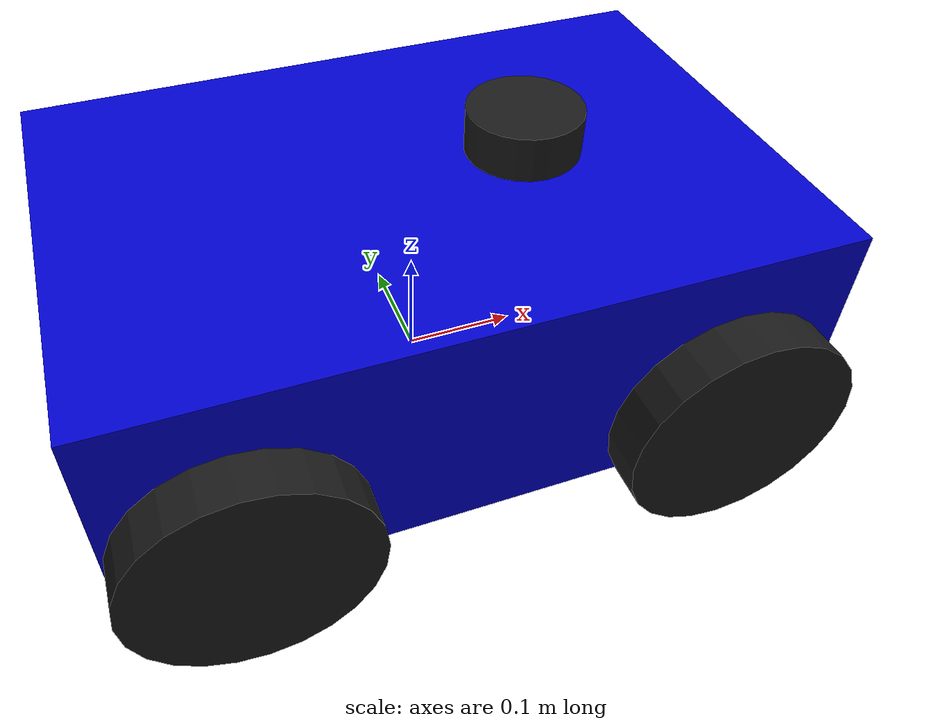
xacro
<?xml version="1.0"?>
<robot xmlns:xacro="http://www.ros.org/wiki/xacro" name="sar_robot">

  <material name="blue"><color rgba="0 0 0.8 1"/></material>
  <material name="black"><color rgba="0.1 0.1 0.1 1"/></material>

  <link name="base_link">
    <visual>
      <origin xyz="0 0 0.1"/>
      <geometry><box size="0.6 0.4 0.2"/></geometry>
      <material name="blue"/>
    </visual>
    <collision>
      <origin xyz="0 0 0.1"/>
      <geometry><box size="0.6 0.4 0.2"/></geometry>
    </collision>
    <inertial>
      <origin xyz="0 0 0.1"/><mass value="5.0"/>
      <inertia ixx="0.08" ixy="0.0" ixz="0.0" iyy="0.16" iyz="0.0" izz="0.22"/>
    </inertial>
  </link>

  <xacro:macro name="wheel" params="prefix x_reflect y_reflect">
    <link name="${prefix}_wheel">
      <visual>
        <geometry><cylinder radius="0.1" length="0.04"/></geometry>
        <material name="black"/>
      </visual>
      <collision>
        <geometry><cylinder radius="0.1" length="0.04"/></geometry>
      </collision>
      <inertial>
        <mass value="0.5"/>
        <inertia ixx="0.001" ixy="0.0" ixz="0.0" iyy="0.001" iyz="0.0" izz="0.002"/>
      </inertial>
    </link>
    <joint name="${prefix}_wheel_joint" type="continuous">
      <parent link="base_link"/>
      <child link="${prefix}_wheel"/>
      <origin xyz="${x_reflect*0.2} ${y_reflect*0.22} 0.05" rpy="${y_reflect*pi/2} 0 0"/>
      <axis xyz="0 0 1"/>
    </joint>
  </xacro:macro>

  <xacro:wheel prefix="front_left"  x_reflect="1"  y_reflect="1" />
  <xacro:wheel prefix="front_right" x_reflect="1"  y_reflect="-1" />
  <xacro:wheel prefix="back_left"   x_reflect="-1" y_reflect="1" />
  <xacro:wheel prefix="back_right"  x_reflect="-1" y_reflect="-1" />

  <gazebo>
    <plugin filename="gz-sim-sensors-system" name="gz::sim::systems::Sensors">
      <render_engine>ogre</render_engine>
    </plugin>

    <plugin filename="gz-sim-diff-drive-system" name="gz::sim::systems::DiffDrive">
      <left_joint>front_left_wheel_joint</left_joint>
      <left_joint>back_left_wheel_joint</left_joint>
      <right_joint>front_right_wheel_joint</right_joint>
      <right_joint>back_right_wheel_joint</right_joint>
      <wheel_separation>0.44</wheel_separation>
      <wheel_radius>0.1</wheel_radius>
      <topic>cmd_vel</topic>
    </plugin>
  </gazebo>

  <link name="laser_frame">
    <visual>
      <geometry><cylinder radius="0.05" length="0.04"/></geometry>
      <material name="black"/>
    </visual>
    <collision>
      <geometry><cylinder radius="0.05" length="0.04"/></geometry>
    </collision>
    <inertial>
      <mass value="0.1"/>
      <inertia ixx="0.0001" ixy="0" ixz="0" iyy="0.0001" iyz="0" izz="0.0002"/>
    </inertial>
  </link>

  <joint name="laser_joint" type="fixed">
    <parent link="base_link"/>
    <child link="laser_frame"/>
    <origin xyz="0.1 0 0.22" rpy="0 0 0"/>
  </joint>

  <gazebo reference="laser_frame">
    <sensor name="lidar" type="gpu_lidar">
      <always_on>true</always_on>
      <update_rate>10</update_rate>
      <visualize>true</visualize>
      <topic>/scan</topic>
      <gz_frame_id>laser_frame</gz_frame_id>
      <lidar>
        <scan>
          <horizontal>
            <samples>360</samples>
            <min_angle>-3.14</min_angle>
            <max_angle>3.14</max_angle>
          </horizontal>
        </scan>
        <range>
          <min>0.12</min>
          <max>12.0</max>
        </range>
      </lidar>
    </sensor>
  </gazebo>
</robot>
